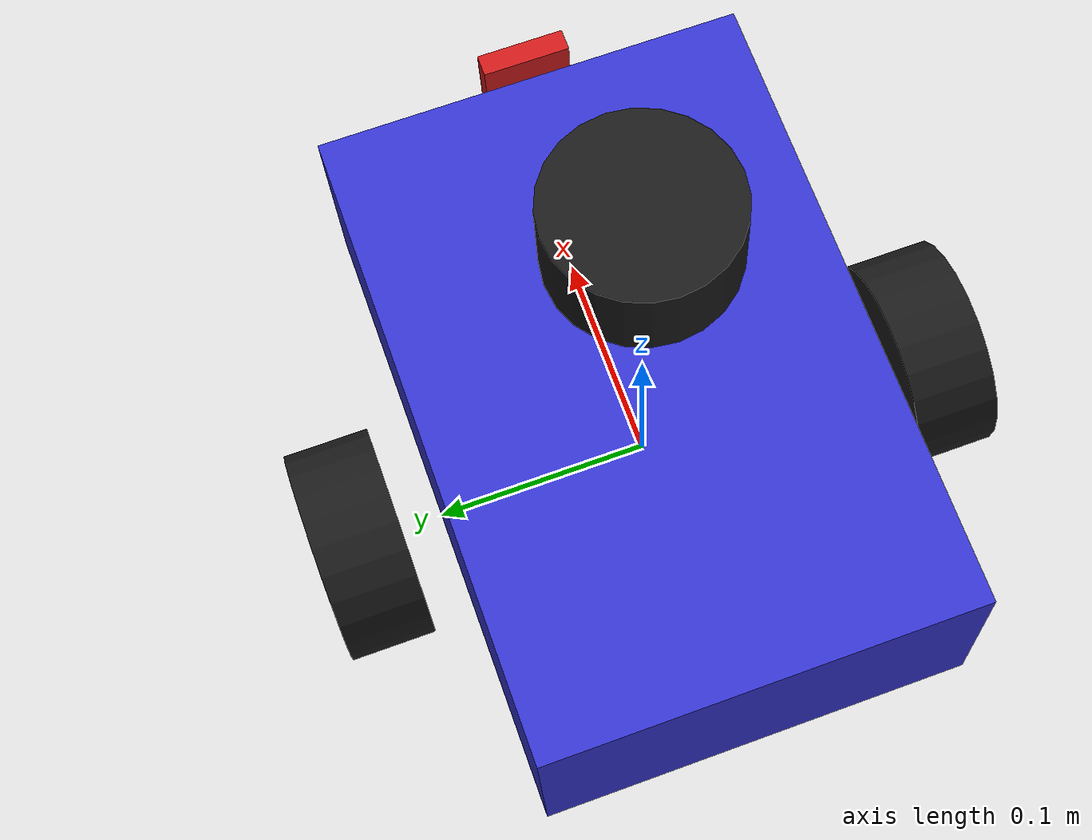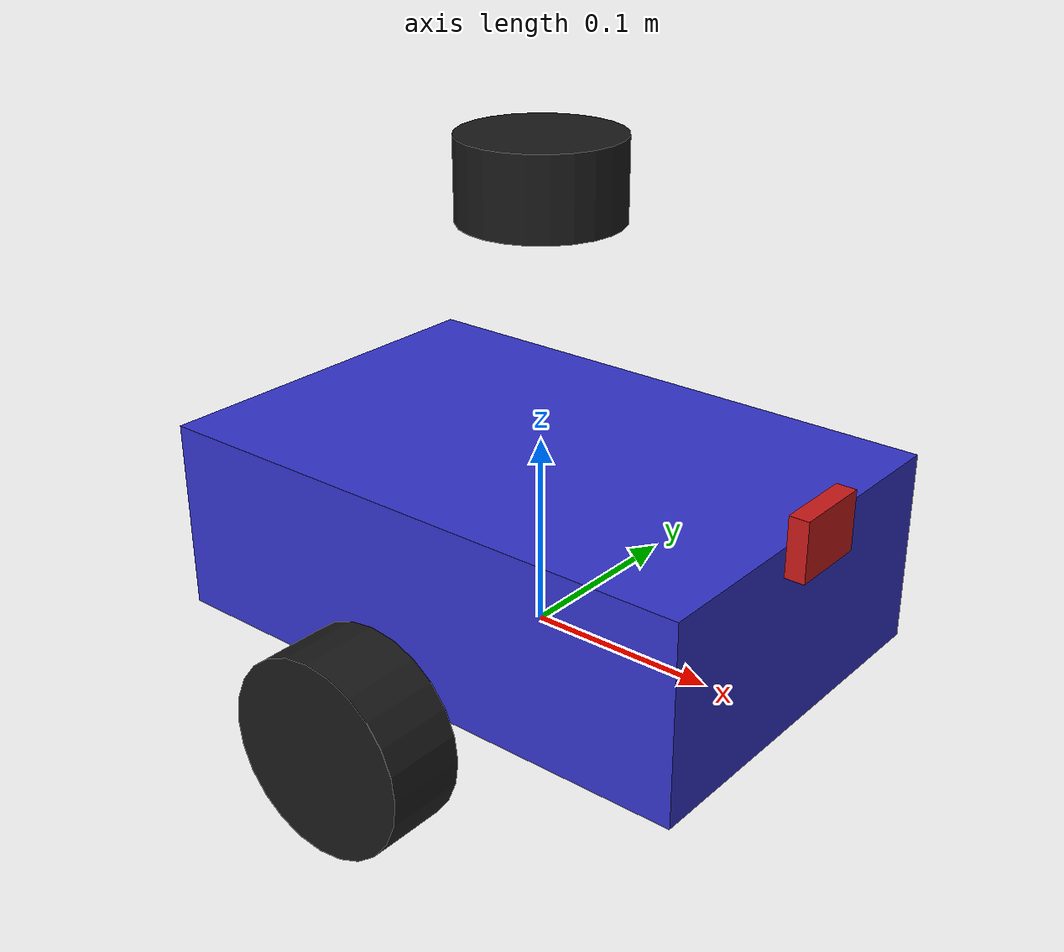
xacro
<?xml version="1.0"?>
<robot name="my_robot" xmlns:xacro="http://www.ros.org/wiki/xacro">

  <!-- Kích thước & hằng số -->
  <xacro:include filename="$(find my_robot_description)/urdf/properties.xacro"/>

  <!-- Màu sắc RViz -->
  <xacro:include filename="$(find my_robot_description)/urdf/materials.xacro"/>

  <!-- Macro tính inertia -->
  <xacro:include filename="$(find my_robot_description)/urdf/macros.xacro"/>

  <!-- Links + Joints (Tuần 3 + fixes Tuần 4) -->
  <xacro:include filename="$(find my_robot_description)/urdf/robot_core.xacro"/>

  <!-- TUẦN 4 MỚI: DiffDrive plugin → robot nhận /cmd_vel, xuất /odom -->
  <xacro:include filename="$(find my_robot_description)/urdf/gazebo_control.xacro"/>

  <!-- TUẦN 4 MỚI: LiDAR → /scan, Camera → /camera/image_raw -->
  <xacro:include filename="$(find my_robot_description)/urdf/sensors.xacro"/>

</robot>

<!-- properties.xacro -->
<!--
  properties.xacro — Kích thước & hằng số của robot
  ===================================================
  Thay đổi giá trị ở đây → toàn bộ robot tự điều chỉnh.
  Đơn vị: mét (m) và kilogram (kg).
-->
<robot xmlns:xacro="http://www.ros.org/wiki/xacro">

  <!-- ── CHASSIS (thân robot) ──────────────────────── -->
  <xacro:property name="chassis_length" value="0.30"/>  <!-- dài 30 cm -->
  <xacro:property name="chassis_width"  value="0.20"/>  <!-- rộng 20 cm -->
  <xacro:property name="chassis_height" value="0.10"/>  <!-- cao 10 cm -->
  <xacro:property name="chassis_mass"   value="1.0"/>   <!-- kg -->

  <!-- ── DRIVE WHEELS (bánh dẫn động trái/phải) ───── -->
  <xacro:property name="wheel_radius"   value="0.05"/>  <!-- bán kính 5 cm -->
  <xacro:property name="wheel_width"    value="0.04"/>  <!-- bề rộng bánh 4 cm -->
  <xacro:property name="wheel_mass"     value="0.1"/>   <!-- kg -->
  <!-- Khoảng cách từ tâm chassis đến tâm bánh theo trục Y -->
  <xacro:property name="wheel_ygap"     value="0.14"/>  <!-- 14 cm -->
  <!-- Offset dọc: bánh chạm sàn khi chassis cách sàn đúng 1 wheel_radius -->
  <xacro:property name="wheel_zoff"     value="-0.05"/> <!-- −5 cm -->

  <!-- ── CASTER WHEEL (bánh cân bằng phía sau) ─────── -->
  <xacro:property name="caster_radius"  value="0.025"/> <!-- bán kính 2.5 cm -->
  <xacro:property name="caster_mass"    value="0.05"/>  <!-- kg -->
  <!-- Vị trí: sau chassis -->
  <xacro:property name="caster_xoff"    value="-0.10"/> <!-- −10 cm (phía sau) -->

  <!-- ── HẰNG SỐ TOÁN HỌC ─────────────────────────── -->
  <xacro:property name="PI" value="3.14159265358979"/>

</robot>

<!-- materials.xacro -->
<robot xmlns:xacro="http://www.ros.org/wiki/xacro">

  <material name="blue">
    <color rgba="0.2 0.2 0.8 1.0"/>
  </material>

  <material name="black">
    <color rgba="0.1 0.1 0.1 1.0"/>
  </material>

  <material name="white">
    <color rgba="0.9 0.9 0.9 1.0"/>
  </material>

  <material name="gray">
    <color rgba="0.5 0.5 0.5 1.0"/>
  </material>

  <material name="red">
    <color rgba="0.8 0.1 0.1 1.0"/>
  </material>

  <material name="orange">
    <color rgba="1.0 0.5 0.0 1.0"/>
  </material>

</robot>

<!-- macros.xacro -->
<robot xmlns:xacro="http://www.ros.org/wiki/xacro">

  <xacro:macro name="inertial_box" params="mass x y z *origin">
    <inertial>
      <xacro:insert_block name="origin"/>
      <mass value="${mass}"/>
      <inertia
        ixx="${(1/12) * mass * (y*y + z*z)}"
        ixy="0" ixz="0"
        iyy="${(1/12) * mass * (x*x + z*z)}"
        iyz="0"
        izz="${(1/12) * mass * (x*x + y*y)}"/>
    </inertial>
  </xacro:macro>

  <!-- ══════════════════════════════════════════════════
       MACRO: Inertia cho hình cầu (sphere)
       Tham số: mass, radius
       ══════════════════════════════════════════════════ -->
  <xacro:macro name="inertial_sphere" params="mass radius *origin">
    <inertial>
      <xacro:insert_block name="origin"/>
      <mass value="${mass}"/>
      <inertia
        ixx="${(2/5) * mass * radius * radius}"
        ixy="0" ixz="0"
        iyy="${(2/5) * mass * radius * radius}"
        iyz="0"
        izz="${(2/5) * mass * radius * radius}"/>
    </inertial>
  </xacro:macro>

  <!-- ══════════════════════════════════════════════════
       MACRO: Inertia cho hình trụ (cylinder)
       Tham số: mass, radius, length
       ══════════════════════════════════════════════════ -->
  <xacro:macro name="inertial_cylinder" params="mass radius length *origin">
    <inertial>
      <xacro:insert_block name="origin"/>
      <mass value="${mass}"/>
      <inertia
        ixx="${(1/12) * mass * (3*radius*radius + length*length)}"
        ixy="0" ixz="0"
        iyy="${(1/12) * mass * (3*radius*radius + length*length)}"
        iyz="0"
        izz="${(1/2) * mass * radius * radius}"/>
    </inertial>
  </xacro:macro>

</robot>

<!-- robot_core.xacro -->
<robot xmlns:xacro="http://www.ros.org/wiki/xacro">

  <!-- BASE FOOTPRINT -->
  <link name="base_footprint"/>
  <joint name="base_footprint_joint" type="fixed">
    <parent link="base_footprint"/>
    <child  link="base_link"/>
    <origin xyz="0 0 ${wheel_radius}" rpy="0 0 0"/>
  </joint>

  <!-- CHASSIS -->
  <link name="base_link">
    <visual>
      <origin xyz="0 0 0" rpy="0 0 0"/>
      <geometry>
        <box size="${chassis_length} ${chassis_width} ${chassis_height}"/>
      </geometry>
      <material name="blue"/>
    </visual>
    <collision>
      <origin xyz="0 0 0" rpy="0 0 0"/>
      <geometry>
        <box size="${chassis_length} ${chassis_width} ${chassis_height}"/>
      </geometry>
    </collision>
    <xacro:inertial_box mass="${chassis_mass}"
      x="${chassis_length}" y="${chassis_width}" z="${chassis_height}">
      <origin xyz="0 0 0" rpy="0 0 0"/>
    </xacro:inertial_box>
  </link>

  <!-- LEFT DRIVE WHEEL -->
  <joint name="left_wheel_joint" type="continuous">
    <parent link="base_link"/>
    <child  link="left_wheel_link"/>
    <origin xyz="0 ${wheel_ygap} ${wheel_zoff}" rpy="-${PI/2} 0 0"/>
    <axis xyz="0 0 1"/>
    <!-- TUẦN 4: giới hạn lực (N.m) và tốc độ góc (rad/s) -->
    <limit effort="0.05" velocity="10.0"/>
  </joint>

  <link name="left_wheel_link">
    <visual>
      <origin xyz="0 0 0" rpy="0 0 0"/>
      <geometry>
        <cylinder radius="${wheel_radius}" length="${wheel_width}"/>
      </geometry>
      <material name="black"/>
    </visual>
    <collision>
      <origin xyz="0 0 0" rpy="0 0 0"/>
      <geometry>
        <!-- TUẦN 4: sphere → 1 điểm tiếp xúc, giảm lateral friction -->
        <sphere radius="${wheel_radius}"/>
      </geometry>
    </collision>
    <xacro:inertial_cylinder mass="${wheel_mass}"
      radius="${wheel_radius}" length="${wheel_width}">
      <origin xyz="0 0 0" rpy="0 0 0"/>
    </xacro:inertial_cylinder>
  </link>

  <!-- RIGHT DRIVE WHEEL -->
  <joint name="right_wheel_joint" type="continuous">
    <parent link="base_link"/>
    <child  link="right_wheel_link"/>
    <origin xyz="0 -${wheel_ygap} ${wheel_zoff}" rpy="${PI/2} 0 0"/>
    <axis xyz="0 0 1"/>
    <!-- TUẦN 4: giới hạn lực và tốc độ -->
    <limit effort="0.05" velocity="10.0"/>
  </joint>

  <link name="right_wheel_link">
    <visual>
      <origin xyz="0 0 0" rpy="0 0 0"/>
      <geometry>
        <cylinder radius="${wheel_radius}" length="${wheel_width}"/>
      </geometry>
      <material name="black"/>
    </visual>
    <collision>
      <origin xyz="0 0 0" rpy="0 0 0"/>
      <geometry>
        <!-- TUẦN 4: sphere thay cylinder -->
        <sphere radius="${wheel_radius}"/>
      </geometry>
    </collision>
    <xacro:inertial_cylinder mass="${wheel_mass}"
      radius="${wheel_radius}" length="${wheel_width}">
      <origin xyz="0 0 0" rpy="0 0 0"/>
    </xacro:inertial_cylinder>
  </link>

  <!-- CASTER WHEEL -->
  <joint name="caster_wheel_joint" type="fixed">
    <parent link="base_link"/>
    <child  link="caster_wheel_link"/>
    <origin xyz="${caster_xoff} 0 ${wheel_zoff}" rpy="0 0 0"/>
  </joint>

  <link name="caster_wheel_link">
    <visual>
      <origin xyz="0 0 0" rpy="0 0 0"/>
      <geometry>
        <sphere radius="${caster_radius}"/>
      </geometry>
      <material name="white"/>
    </visual>
    <collision>
      <origin xyz="0 0 0" rpy="0 0 0"/>
      <geometry>
        <sphere radius="${caster_radius}"/>
      </geometry>
    </collision>
    <xacro:inertial_sphere mass="${caster_mass}" radius="${caster_radius}">
      <origin xyz="0 0 0" rpy="0 0 0"/>
    </xacro:inertial_sphere>
  </link>

  <!-- TUẦN 4: tắt ma sát caster wheel
       mu1/mu2 = 0 → caster quay tự do, không kéo robot khi quay,
       odometry chính xác hơn -->
  <gazebo reference="caster_wheel_link">
    <mu1>0.0</mu1>
    <mu2>0.0</mu2>
  </gazebo>

</robot>

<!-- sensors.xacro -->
<robot xmlns:xacro="http://www.ros.org/wiki/xacro">

  <!-- LIDAR -->
  <joint name="lidar_joint" type="fixed">
    <parent link="base_link"/>
    <child link="lidar_link"/>
    <origin xyz="0 0 0.18" rpy="0 0 0"/>
  </joint>

  <link name="lidar_link">
    <visual>
      <geometry>
        <cylinder length="0.04" radius="0.04"/>
      </geometry>
      <material name="black"/>
    </visual>
    <collision>
      <geometry>
        <cylinder length="0.04" radius="0.04"/>
      </geometry>
    </collision>
    <inertial>
      <mass value="0.1"/>
      <inertia ixx="0.001" ixy="0" ixz="0"
               iyy="0.001" iyz="0" izz="0.001"/>
    </inertial>
  </link>

  <gazebo reference="lidar_link">
    <sensor type="ray" name="lidar_sensor">
      <pose>0 0 0 0 0 0</pose>
      <visualize>false</visualize>
      <update_rate>10</update_rate>
      <ray>
        <scan>
          <horizontal>
            <samples>360</samples>
            <resolution>1</resolution>
            <min_angle>-3.14159</min_angle>
            <max_angle>3.14159</max_angle>
          </horizontal>
        </scan>
        <range>
          <min>0.12</min>
          <max>12.0</max>
          <resolution>0.01</resolution>
        </range>
      </ray>
      <plugin name="gazebo_ros_lidar"
              filename="libgazebo_ros_ray_sensor.so">
        <ros>
          <remapping>~/out:=/scan</remapping>
        </ros>
        <frameName>lidar_link</frameName>
      </plugin>
    </sensor>
  </gazebo>

  <!-- CAMERA -->
  <joint name="camera_joint" type="fixed">
    <parent link="base_link"/>
    <child link="camera_link"/>
    <origin xyz="0.155 0 0.05" rpy="0 0 0"/>
  </joint>

  <link name="camera_link">
    <visual>
      <geometry>
        <box size="0.01 0.04 0.03"/>
      </geometry>
      <material name="red"/>
    </visual>
    <inertial>
      <mass value="0.05"/>
      <inertia ixx="0.0001" ixy="0" ixz="0"
               iyy="0.0001" iyz="0" izz="0.0001"/>
    </inertial>
  </link>

  <joint name="camera_optical_joint" type="fixed">
    <parent link="camera_link"/>
    <child link="camera_optical_link"/>
    <origin xyz="0 0 0" rpy="-1.5707963 0 -1.5707963"/>
  </joint>

  <link name="camera_optical_link"/>

  <gazebo reference="camera_link">
    <sensor type="camera" name="camera_sensor">
      <update_rate>30</update_rate>
      <camera name="head">
        <horizontal_fov>1.3962634</horizontal_fov>
        <image>
          <width>640</width>
          <height>480</height>
          <format>R8G8B8</format>
        </image>
        <clip>
          <near>0.02</near>
          <far>300</far>
        </clip>
      </camera>
      <plugin name="gazebo_ros_camera"
              filename="libgazebo_ros_camera.so">
        <cameraName>camera</cameraName>
        <imageTopicName>/camera/image_raw</imageTopicName>
        <cameraInfoTopicName>/camera/camera_info</cameraInfoTopicName>
        <frameName>camera_link</frameName>
      </plugin>
    </sensor>
  </gazebo>
  <!-- DEPTH CAMERA -->
  <gazebo reference="camera_link">
    <sensor type="depth" name="depth_sensor">
      <update_rate>30</update_rate>
      <camera name="depth">
        <horizontal_fov>1.3962634</horizontal_fov>
        <image>
          <width>640</width>
          <height>480</height>
          <format>R8G8B8</format>
        </image>
        <clip>
          <near>0.02</near>
          <far>300</far>
        </clip>
      </camera>
      <plugin name="gazebo_ros_depth_camera"
          filename="libgazebo_ros_camera.so">
    <ros>
      <remapping>~/image_raw:=/depth/image_raw</remapping>
      <remapping>~/depth/image_raw:=/depth/image_raw</remapping>
    </ros>
    <frameName>camera_link</frameName>
     </plugin>
    </sensor>
  </gazebo>
</robot>
